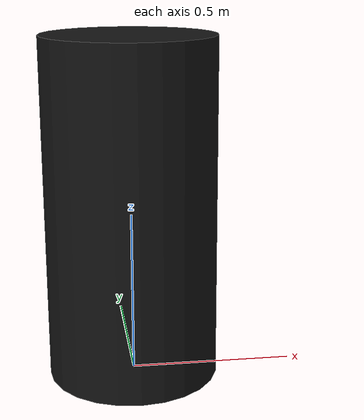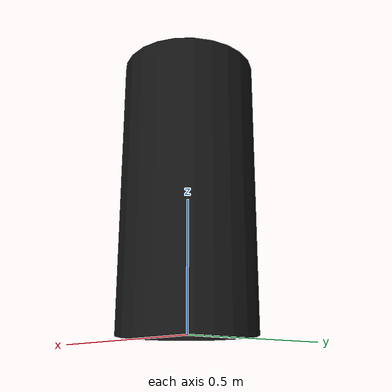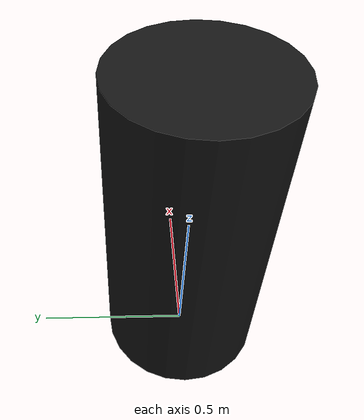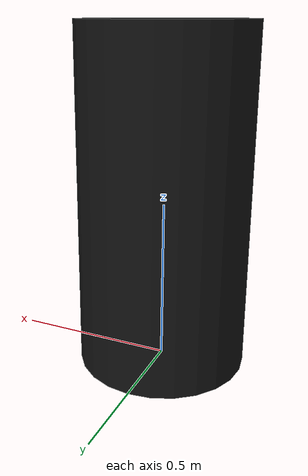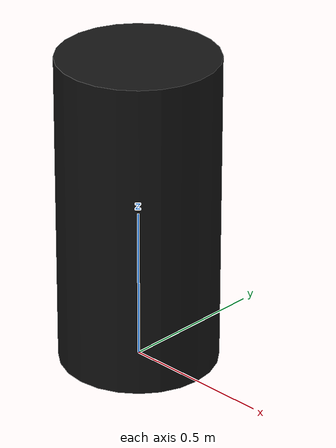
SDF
<?xml version="1.0"?>
<sdf version="1.10">
  <model name="robotx_buoy_black">
    <static>true</static>
    <pose>0 0 0 0 0 0</pose>
    <link name="body_link">
      <collision name="body_collision">
        <pose>0 0 0.52 0 0 0</pose>
        <geometry>
          <cylinder>
            <radius>0.26</radius>
            <length>1.04</length>
          </cylinder>
        </geometry>
      </collision>
      <visual name="body_visual">
        <pose>0 0 0.52 0 0 0</pose>
        <geometry>
          <cylinder>
            <radius>0.26</radius>
            <length>1.04</length>
          </cylinder>
        </geometry>
        <material>
          <ambient>0.05 0.05 0.05 1</ambient>
          <diffuse>0.08 0.08 0.08 1</diffuse>
          <specular>0.08 0.08 0.08 1</specular>
        </material>
      </visual>
    </link>
  </model>
</sdf>
